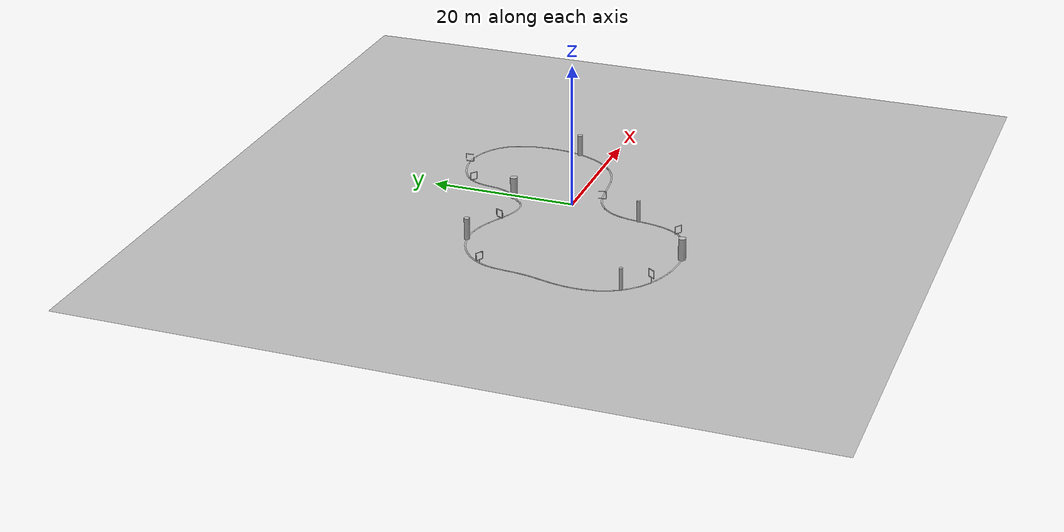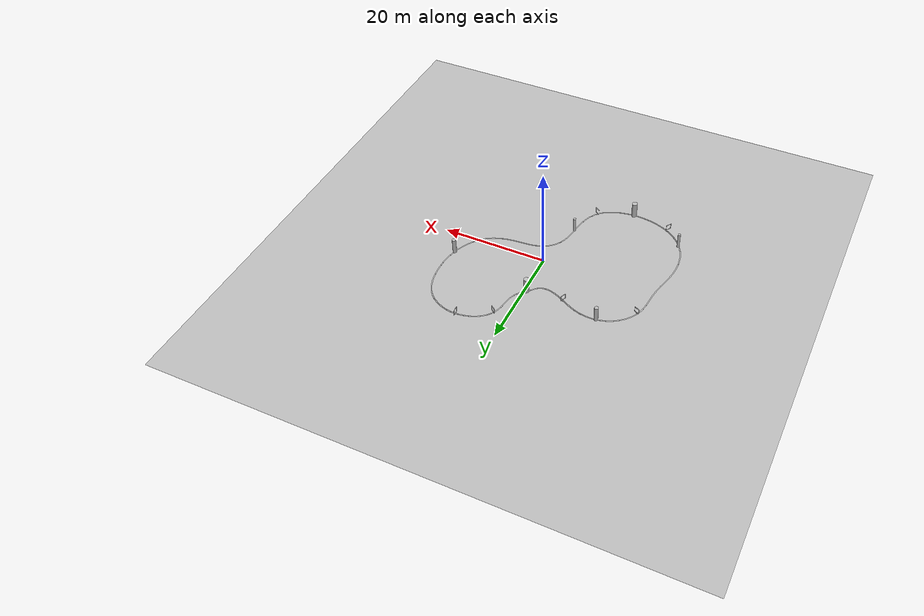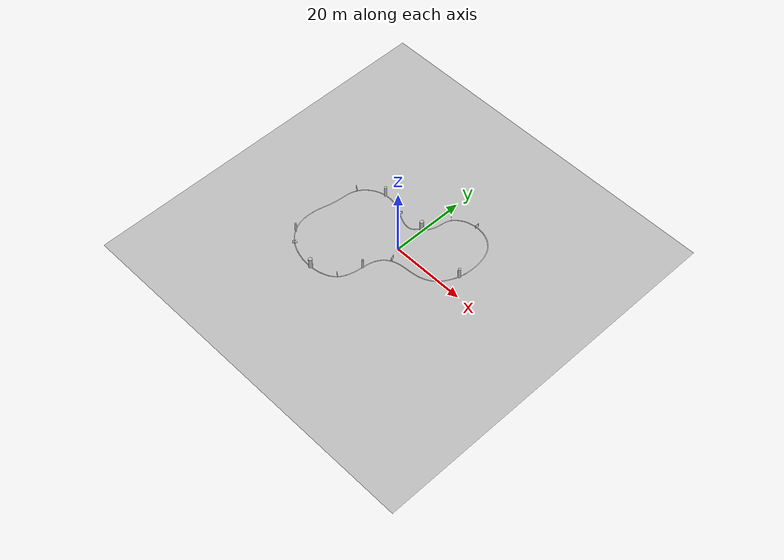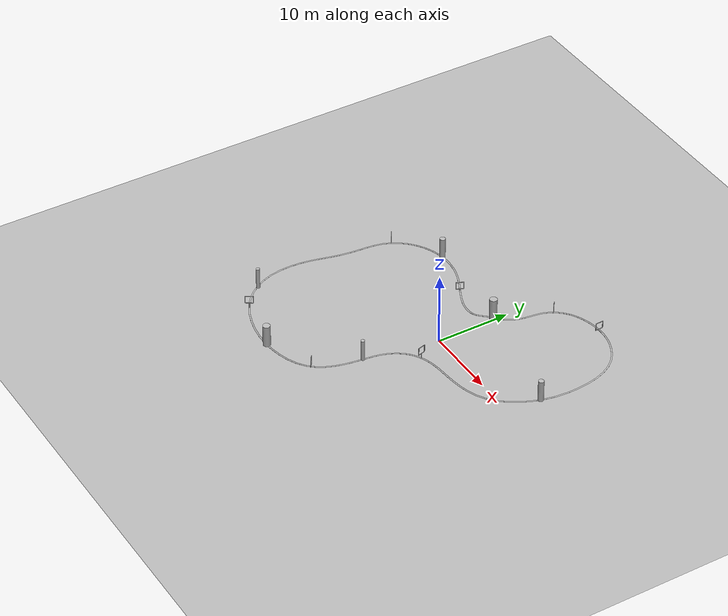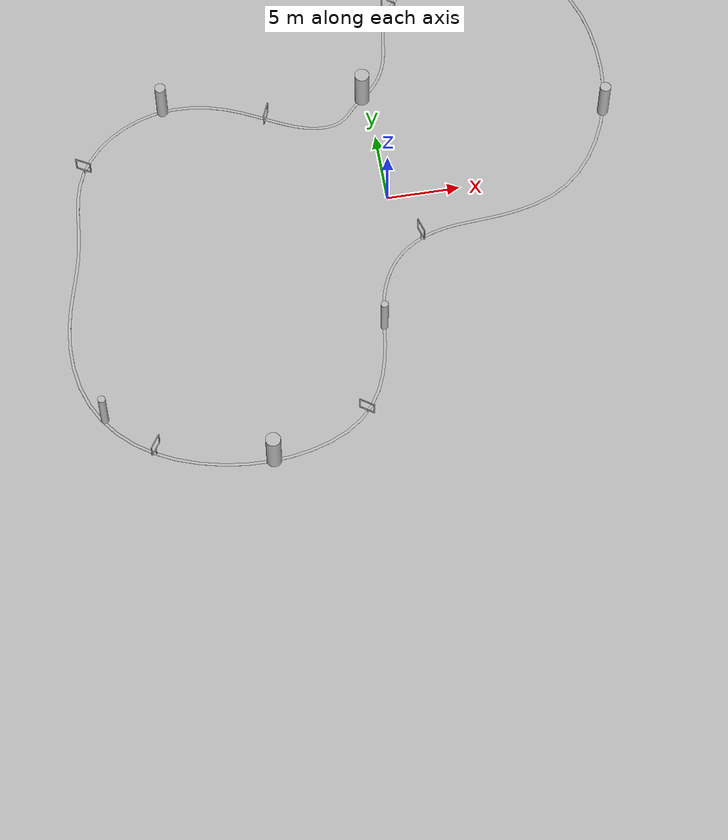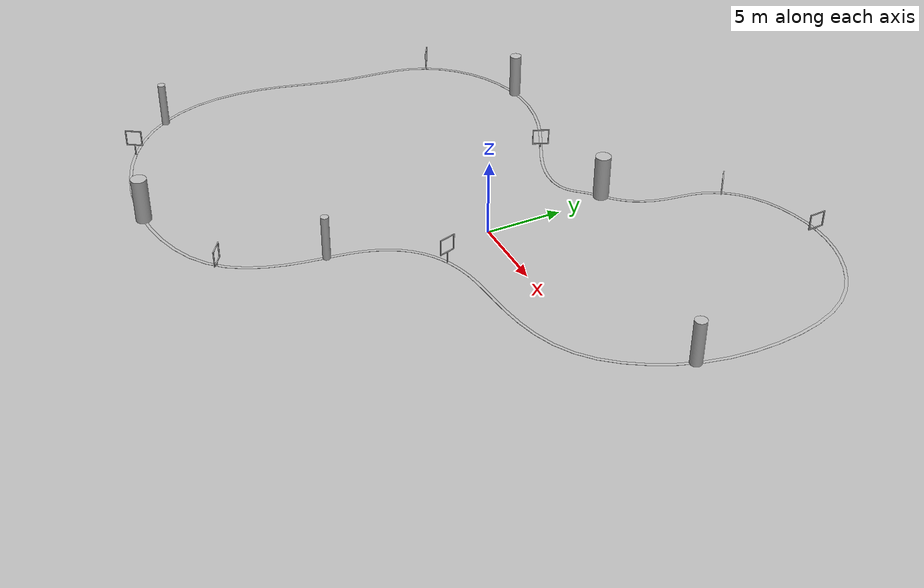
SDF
<sdf version="1.5">
 <world name="default">
  <include><uri>model://sun</uri></include>
  <include><uri>model://ground_my</uri></include>
  <include><uri>model://road_2</uri><static>true</static></include>
  <include>
   <name>1cyl</name>
   <uri>model://cylinder_1</uri>
   <static>true</static>
   <pose>-10.63 -18.62 0 0 0 0</pose>
  </include>
  <include>
   <name>2cyl</name>
   <uri>model://cylinder_1</uri>
   <static>true</static>
   <pose>-0.41 8.27 0 0 0 0</pose>
  </include>
  <include>
   <name>3cyl</name>
   <uri>model://cylinder_0.5</uri>
   <static>true</static>
   <pose>-21.17 -13.919 0 0 0 0</pose>
  </include>
  <include>
   <name>4cyl</name>
   <uri>model://cylinder_0.5</uri>
   <static>true</static>
   <pose>-1.88 -9.93 0 0 0 0</pose>
  </include>
  <include>
   <name>5cyl</name>
   <uri>model://cylinder_0.75</uri>
   <static>true</static>
   <pose>15.99 4.57 0 0 0 0</pose>
  </include>
  <include>
   <name>6cyl</name>
   <uri>model://cylinder_0.75</uri>
   <static>true</static>
   <pose>-14.3 9.48 0 0 0 0</pose>
  </include>
  <include>
   <name>1frame</name>
   <uri>model://frame_1.2</uri>
   <static>true</static>
   <pose>2.6536 15.3801 0 0 0 -2.218753</pose>
  </include>
  <include>
   <name>2frame</name>
   <uri>model://frame_1.2</uri>
   <static>true</static>
   <pose>-7.2792 7.681 0 0 0 2.750801</pose>
  </include>
  <include>
   <name>3frame</name>
   <uri>model://frame_1.2</uri>
   <static>true</static>
   <pose>-4.0561 -16.0751 0 0 0 0.971245</pose>
  </include>
  <include>
   <name>4frame</name>
   <uri>model://frame_2</uri>
   <static>true</static>
   <pose>-18.1450 -16.9065 0 0 0 -0.595086</pose>
  </include>
  <include>
   <name>6frame</name>
   <uri>model://frame_2</uri>
   <static>true</static>
   <pose>1.6932 -3.6166 0 0 0 0.282743</pose>
  </include>
  <include>
   <name>8frame</name>
   <uri>model://frame_1.5</uri>
   <static>true</static>
   <pose>-20.2542 5.3696 0 0 0 -2.083714</pose>
  </include>
  <include>
   <name>10frame</name>
   <uri>model://frame_1</uri>
   <static>true</static>
   <pose>8.5252 18.3121 0 0 0 -3.092744</pose>
  </include>
  <include>
   <uri>model://platform</uri>
   <static>true</static>
   <pose>-22.6515 -6.4665 0 0 0 -2.537643</pose>
  </include>
 </world>
</sdf>

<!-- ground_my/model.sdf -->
<sdf version="1.5">
    <model name="ground">
        <static>true</static>
        <link name="link">
            <collision name="collision">
                <geometry>
                    <mesh>
                        <scale>1 1 1</scale>
                        <uri>model://ground_my/meshes/ground.dae</uri>
                    </mesh>
                    <surface>
                    <friction>
                        <ode>
                            <mu>1.2</mu>
                            <mu2>1.2</mu2>
                        </ode>
                    </friction>
                    </surface>
                </geometry>
            </collision>
            <visual name="visual">
              <geometry>
                <mesh>
                    <scale>1 1 1</scale>
                    <uri>model://ground_my/meshes/ground.dae</uri>
                </mesh>
              </geometry>
             </visual>
        </link>
    </model>
</sdf>

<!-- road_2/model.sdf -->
<sdf version="1.5">
    <model name="road">
        <static>true</static>
        <link name="link">
            <collision name="collision">
                <pose>0 0 0 0 0 0</pose>
                <geometry>
                    <mesh>
                        <uri>model://road_2/meshes/road_2.dae</uri>
                    </mesh>
                </geometry>
            </collision>
            <visual name="visual">

              <pose>0 0 0 0 0 0</pose>
              <geometry>
              <mesh>
                 <uri>model://road_2/meshes/road_2.dae</uri>
              </mesh>
              </geometry>

              <material>
                  <script>
                      <uri>model://road_2/materials/scripts</uri>
                      <uri>model://road_2/materials/textures</uri>
                      <name>roadMat/Diffuse</name>
                  </script>
              </material>
             </visual>

        </link>
    </model>
</sdf>

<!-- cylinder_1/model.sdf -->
<sdf version="1.5">
    <model name="cylinder_1">
        <static>true</static>
        <link name="link">
            <collision name="collision1">
                <pose>0 0 0 0 0 0</pose>
                <geometry>
                    <mesh>
                        <uri>model://cylinder_1/meshes/cylinder_1.stl</uri>
                    </mesh>
                </geometry>
            </collision>
            <visual name="visual1">

              <pose>0 0 0 0 0 0</pose>
              <geometry>
              <mesh>
                 <uri>model://cylinder_1/meshes/cylinder_1.dae</uri>
              </mesh>
              </geometry>

              <material>
                  <script>
                      <uri>model://cylinder_1/materials/scripts</uri>
                      <uri>model://cylinder_1/materials/textures</uri>
                      <name>cylinderMat/Diffuse</name>
                  </script>
              </material>
             </visual>

        </link>
    </model>
</sdf>

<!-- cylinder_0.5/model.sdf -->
<sdf version="1.5">
    <model name="cylinder_05">
        <static>true</static>
        <link name="link">
            <collision name="collision1">
                <pose>0 0 0 0 0 0</pose>
                <geometry>
                    <mesh>
                        <uri>model://cylinder_0.5/meshes/cylinder_0_5.stl</uri>
                    </mesh>
                </geometry>
            </collision>
            <visual name="visual1">

              <pose>0 0 0 0 0 0</pose>
              <geometry>
              <mesh>
                 <uri>model://cylinder_0.5/meshes/cylinder_0_5.dae</uri>
              </mesh>
              </geometry>

              <material>
                  <script>
                      <uri>model://cylinder_0.5/materials/scripts</uri>
                      <uri>model://cylinder_0.5/materials/textures</uri>
                      <name>cylinderMat/Diffuse</name>
                  </script>
              </material>
             </visual>

        </link>
    </model>
</sdf>

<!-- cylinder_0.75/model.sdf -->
<sdf version="1.5">
    <model name="cylinder_075">
        <static>true</static>
        <link name="link">
            <collision name="collision1">
                <pose>0 0 0 0 0 0</pose>
                <geometry>
                    <mesh>
                        <uri>model://cylinder_0.75/meshes/cylinder_0_75.stl</uri>
                    </mesh>
                </geometry>
            </collision>
            <visual name="visual1">

              <pose>0 0 0 0 0 0</pose>
              <geometry>
              <mesh>
                 <uri>model://cylinder_0.75/meshes/cylinder_0_75.dae</uri>
              </mesh>
              </geometry>

              <material>
                  <script>
                      <uri>model://cylinder_0.75/materials/scripts</uri>
                      <uri>model://cylinder_0.75/materials/textures</uri>
                      <name>cylinderMat/Diffuse</name>
                  </script>
              </material>
             </visual>

        </link>
    </model>
</sdf>

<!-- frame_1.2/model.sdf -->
<sdf version="1.5">
    <model name="frame_1_2">
        <static>true</static>
        <link name="link">
            <collision name="collision1">
                <pose>0 0 0 0 0 0</pose>
                <geometry>
                    <mesh>
                        <uri>model://frame_1.2/meshes/frame_1_2.stl</uri>
                    </mesh>
                </geometry>
            </collision>
            <visual name="visual1">

              <pose>0 0 0 0 0 0</pose>
              <geometry>
              <mesh>
                 <uri>model://frame_1.2/meshes/frame_1_2.dae</uri>
              </mesh>
              </geometry>

              <material>
                  <script>
                      <uri>model://frame_1.2/materials/scripts</uri>
                      <uri>model://frame_1.2/materials/textures</uri>
                      <name>frameMat/Diffuse</name>
                  </script>
              </material>
             </visual>

        </link>
    </model>
</sdf>

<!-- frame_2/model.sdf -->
<sdf version="1.5">
    <model name="frame_2">
        <static>true</static>
        <link name="link">
            <collision name="collision1">
                <pose>0 0 0 0 0 0</pose>
                <geometry>
                    <mesh>
                        <uri>model://frame_2/meshes/frame_2.stl</uri>
                    </mesh>
                </geometry>
            </collision>
            <visual name="visual1">

              <pose>0 0 0 0 0 0</pose>
              <geometry>
              <mesh>
                 <uri>model://frame_2/meshes/frame_2.dae</uri>
              </mesh>
              </geometry>

              <material>
                  <script>
                      <uri>model://frame_2/materials/scripts</uri>
                      <uri>model://frame_2/materials/textures</uri>
                      <name>frameMat/Diffuse</name>
                  </script>
              </material>
             </visual>

        </link>
    </model>
</sdf>

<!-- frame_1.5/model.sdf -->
<sdf version="1.5">
    <model name="frame_1_5">
        <static>true</static>
        <link name="link">
            <collision name="collision1">
                <pose>0 0 0 0 0 0</pose>
                <geometry>
                    <mesh>
                        <uri>model://frame_1.5/meshes/frame_1_5.stl</uri>
                    </mesh>
                </geometry>
            </collision>
            <visual name="visual1">

              <pose>0 0 0 0 0 0</pose>
              <geometry>
              <mesh>
                 <uri>model://frame_1.5/meshes/frame_1_5.dae</uri>
              </mesh>
              </geometry>

              <material>
                  <script>
                      <uri>model://frame_1.5/materials/scripts</uri>
                      <uri>model://frame_1.5/materials/textures</uri>
                      <name>frameMat/Diffuse</name>
                  </script>
              </material>
             </visual>

        </link>
    </model>
</sdf>

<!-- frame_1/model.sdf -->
<sdf version="1.5">
    <model name="frame_1">
        <static>true</static>
        <link name="link">
            <collision name="collision1">
                <pose>0 0 0 0 0 0</pose>
                <geometry>
                    <mesh>
                        <uri>model://frame_1/meshes/frame_1.stl</uri>
                    </mesh>
                </geometry>
            </collision>
            <visual name="visual1">

              <pose>0 0 0 0 0 0</pose>
              <geometry>
              <mesh>
                 <uri>model://frame_1/meshes/frame_1.dae</uri>
              </mesh>
              </geometry>

              <material>
                  <script>
                      <uri>model://frame_1/materials/scripts</uri>
                      <uri>model://frame_1/materials/textures</uri>
                      <name>frameMat/Diffuse</name>
                  </script>
              </material>
             </visual>

        </link>
    </model>
</sdf>

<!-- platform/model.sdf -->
<sdf version="1.6">
  <model name="platform">
    <static>false</static>
    <link name="dummy_upper"/>

    <joint name="world_joint" type="fixed">
      <parent>world</parent>
      <child>dummy_upper</child>
    </joint>
  </model>
</sdf>
